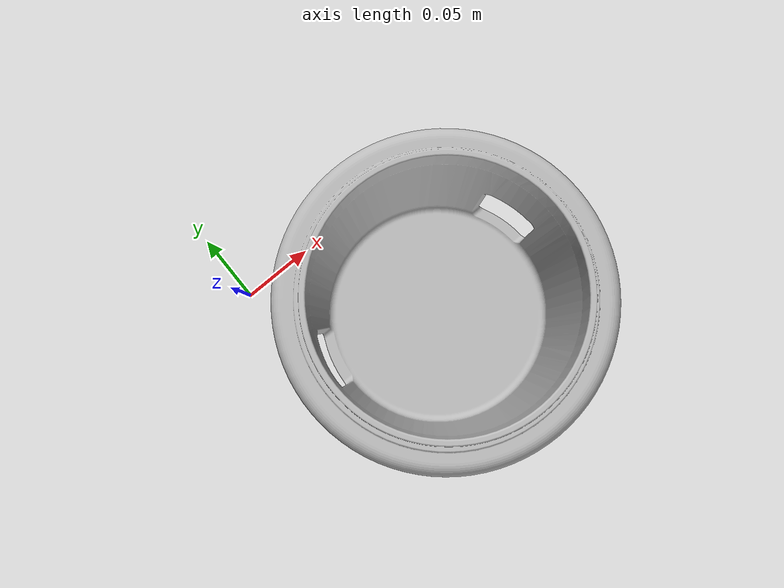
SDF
<?xml version="1.0"?>
<sdf version="1.5">
    <!-- choose model name -->
    <model name="my_model">
        <!-- No static -> dynamic -->
        <static>false</static>

        <!-- Each model link name -->
        <link name="link">
            <!--choose center of mass, inertia, mass -->
            <inertial>
                <pose>0.08 -0.08 0.05 1.57 0 0</pose>
                <mass>1.0</mass>
            </inertial>

            <!--collsion coordinate, size, friction -->
            <collision name="collision">
                <pose>0.085 -0.095 0.05 1.57 0 0</pose>
                <geometry>
                    <box>
                        <size>0.1 0.1 0.1</size>
                    </box>
                </geometry>
                <surface>
                    <friction>
                        <ode>
                            <mu>100</mu>
                            <mu2>50</mu2>
                        </ode>
                    </friction>
                </surface>
            </collision>

            <!-- How to look -->
            <visual name="visual">
                <pose>0 0 0 1.57 0 0</pose>
                <geometry>
                    <mesh>
                        <uri>model://my_model/meshes/bottom.STL</uri>
                        <scale> 0.001 0.001 0.001</scale>
                    </mesh>
                </geometry>
            </visual>
        </link>
    </model>
</sdf>
